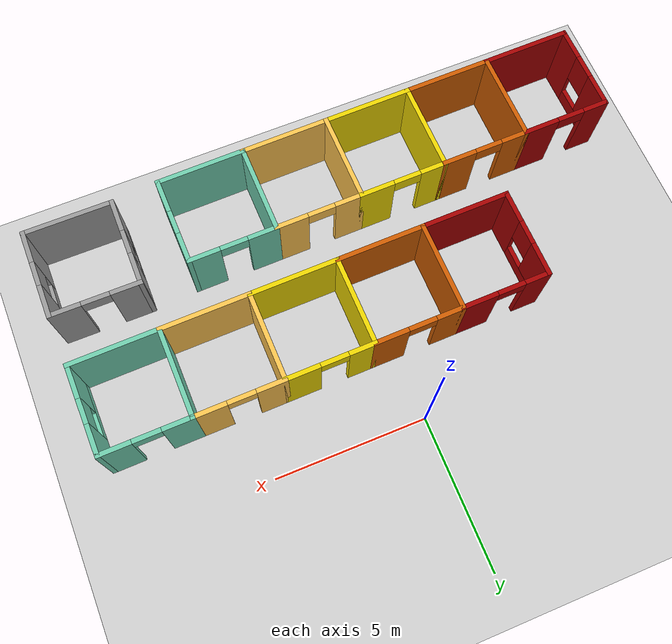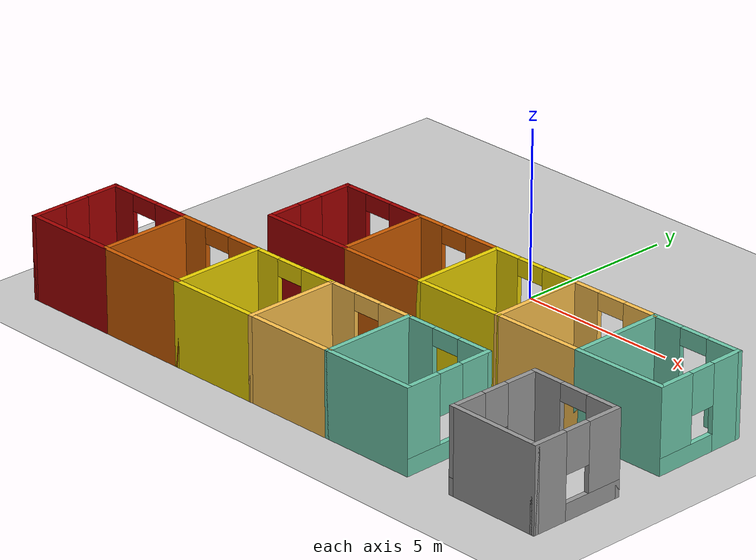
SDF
<sdf version="1.6">
 <world name="default">
  <model name="ground_plane">
   <static>1</static>
   <link name="link">
    <collision name="collision">
     <geometry><plane><normal>0 0 1</normal><size>100 100</size></plane></geometry>
     <surface><friction><ode><mu>100</mu><mu2>50</mu2></ode></friction></surface>
    </collision>
    <visual name="visual">
     <cast_shadows>0</cast_shadows>
     <geometry><plane><normal>0 0 1</normal><size>100 100</size></plane></geometry>
     <material>
      <script><uri>file://media/materials/scripts/gazebo.material</uri><name>Gazebo/Grey</name></script>
     </material>
    </visual>
   </link>
  </model>
  <model name="office_4_0">
   <pose>2.32046 -4.22977 0 0 0 -3.12984</pose>
   <link name="Wall_0">
    <collision name="Wall_0_Collision">
     <geometry><box><size>3 0.15 2.5</size></box></geometry>
     <pose>0 0 1.25 0 -0 0</pose>
    </collision>
    <visual name="Wall_0_Visual">
     <pose>0 0 1.25 0 -0 0</pose>
     <geometry><box><size>3 0.15 2.5</size></box></geometry>
     <material>
      <script><uri>file://media/materials/scripts/gazebo.material</uri><name>Gazebo/Grey</name></script>
      <ambient>0.435294 0.796078 0.67451 1</ambient>
     </material>
     <meta><layer>0</layer></meta>
    </visual>
    <pose>-5.7 0.8025 0 0 -0 0</pose>
   </link>
   <link name="Wall_1">
    <collision name="Wall_1_Collision">
     <geometry><box><size>3 0.15 2.5</size></box></geometry>
     <pose>0 0 1.25 0 -0 0</pose>
    </collision>
    <visual name="Wall_1_Visual">
     <pose>0 0 1.25 0 -0 0</pose>
     <geometry><box><size>3 0.15 2.5</size></box></geometry>
     <material>
      <script><uri>file://media/materials/scripts/gazebo.material</uri><name>Gazebo/Grey</name></script>
      <ambient>0.435294 0.796078 0.67451 1</ambient>
     </material>
     <meta><layer>0</layer></meta>
    </visual>
    <pose>-4.275 -0.6225 0 0 -0 -1.5708</pose>
   </link>
   <link name="Wall_10">
    <pose>5.7 -2.0475 0 0 -0 3.14159</pose>
    <visual name="Wall_10_Visual_0">
     <pose>-1.06469 0 1.25 0 -0 0</pose>
     <geometry><box><size>0.870623 0.15 2.5</size></box></geometry>
     <material>
      <script><uri>file://media/materials/scripts/gazebo.material</uri><name>Gazebo/Grey</name></script>
      <ambient>0.643137 0 0 1</ambient>
     </material>
     <meta><layer>0</layer></meta>
    </visual>
    <collision name="Wall_10_Collision_0">
     <geometry><box><size>0.870623 0.15 2.5</size></box></geometry>
     <pose>-1.06469 0 1.25 0 -0 0</pose>
    </collision>
    <visual name="Wall_10_Visual_1">
     <pose>0.885312 0 1.25 0 -0 0</pose>
     <geometry><box><size>1.22938 0.15 2.5</size></box></geometry>
     <material>
      <script><uri>file://media/materials/scripts/gazebo.material</uri><name>Gazebo/Grey</name></script>
      <ambient>0.643137 0 0 1</ambient>
     </material>
     <meta><layer>0</layer></meta>
    </visual>
    <collision name="Wall_10_Collision_1">
     <geometry><box><size>1.22938 0.15 2.5</size></box></geometry>
     <pose>0.885312 0 1.25 0 -0 0</pose>
    </collision>
    <visual name="Wall_10_Visual_2">
     <pose>-0.179377 0 2.25 0 -0 0</pose>
     <geometry><box><size>0.9 0.15 0.5</size></box></geometry>
     <material>
      <script><uri>file://media/materials/scripts/gazebo.material</uri><name>Gazebo/Grey</name></script>
      <ambient>0.643137 0 0 1</ambient>
     </material>
     <meta><layer>0</layer></meta>
    </visual>
    <collision name="Wall_10_Collision_2">
     <geometry><box><size>0.9 0.15 0.5</size></box></geometry>
     <pose>-0.179377 0 2.25 0 -0 0</pose>
    </collision>
   </link>
   <link name="Wall_12">
    <pose>0 -2.0475 0 0 -0 0</pose>
    <visual name="Wall_12_Visual_0">
     <pose>-0.909766 0 1.25 0 -0 0</pose>
     <geometry><box><size>1.18047 0.15 2.5</size></box></geometry>
     <material>
      <script><uri>file://media/materials/scripts/gazebo.material</uri><name>Gazebo/Grey</name></script>
      <ambient>0.929412 0.831373 0 1</ambient>
     </material>
     <meta><layer>0</layer></meta>
    </visual>
    <collision name="Wall_12_Collision_0">
     <geometry><box><size>1.18047 0.15 2.5</size></box></geometry>
     <pose>-0.909766 0 1.25 0 -0 0</pose>
    </collision>
    <visual name="Wall_12_Visual_1">
     <pose>1.04023 0 1.25 0 -0 0</pose>
     <geometry><box><size>0.919531 0.15 2.5</size></box></geometry>
     <material>
      <script><uri>file://media/materials/scripts/gazebo.material</uri><name>Gazebo/Grey</name></script>
      <ambient>0.929412 0.831373 0 1</ambient>
     </material>
     <meta><layer>0</layer></meta>
    </visual>
    <collision name="Wall_12_Collision_1">
     <geometry><box><size>0.919531 0.15 2.5</size></box></geometry>
     <pose>1.04023 0 1.25 0 -0 0</pose>
    </collision>
    <visual name="Wall_12_Visual_2">
     <pose>0.130469 0 2.25 0 -0 0</pose>
     <geometry><box><size>0.9 0.15 0.5</size></box></geometry>
     <material>
      <script><uri>file://media/materials/scripts/gazebo.material</uri><name>Gazebo/Grey</name></script>
      <ambient>0.929412 0.831373 0 1</ambient>
     </material>
     <meta><layer>0</layer></meta>
    </visual>
    <collision name="Wall_12_Collision_2">
     <geometry><box><size>0.9 0.15 0.5</size></box></geometry>
     <pose>0.130469 0 2.25 0 -0 0</pose>
    </collision>
   </link>
   <link name="Wall_14">
    <collision name="Wall_14_Collision">
     <geometry><box><size>3 0.15 2.5</size></box></geometry>
     <pose>0 0 1.25 0 -0 0</pose>
    </collision>
    <visual name="Wall_14_Visual">
     <pose>0 0 1.25 0 -0 0</pose>
     <geometry><box><size>3 0.15 2.5</size></box></geometry>
     <material>
      <script><uri>file://media/materials/scripts/gazebo.material</uri><name>Gazebo/Grey</name></script>
      <ambient>0.807843 0.360784 0 1</ambient>
     </material>
     <meta><layer>0</layer></meta>
    </visual>
    <pose>2.85 0.8025 0 0 -0 0</pose>
   </link>
   <link name="Wall_16">
    <collision name="Wall_16_Collision">
     <geometry><box><size>3 0.15 2.5</size></box></geometry>
     <pose>0 0 1.25 0 -0 0</pose>
    </collision>
    <visual name="Wall_16_Visual">
     <pose>0 0 1.25 0 -0 0</pose>
     <geometry><box><size>3 0.15 2.5</size></box></geometry>
     <material>
      <script><uri>file://media/materials/scripts/gazebo.material</uri><name>Gazebo/Grey</name></script>
      <ambient>1 0.764706 0.305882 1</ambient>
     </material>
     <meta><layer>0</layer></meta>
    </visual>
    <pose>-2.85 0.8025 0 0 -0 0</pose>
   </link>
   <link name="Wall_18">
    <pose>-5.7 -2.0475 0 0 -0 3.14159</pose>
    <visual name="Wall_18_Visual_0">
     <pose>-0.992968 0 1.25 0 -0 0</pose>
     <geometry><box><size>1.01406 0.15 2.5</size></box></geometry>
     <material>
      <script><uri>file://media/materials/scripts/gazebo.material</uri><name>Gazebo/Grey</name></script>
      <ambient>0.435294 0.796078 0.67451 1</ambient>
     </material>
     <meta><layer>0</layer></meta>
    </visual>
    <collision name="Wall_18_Collision_0">
     <geometry><box><size>1.01406 0.15 2.5</size></box></geometry>
     <pose>-0.992968 0 1.25 0 -0 0</pose>
    </collision>
    <visual name="Wall_18_Visual_1">
     <pose>0.957032 0 1.25 0 -0 0</pose>
     <geometry><box><size>1.08594 0.15 2.5</size></box></geometry>
     <material>
      <script><uri>file://media/materials/scripts/gazebo.material</uri><name>Gazebo/Grey</name></script>
      <ambient>0.435294 0.796078 0.67451 1</ambient>
     </material>
     <meta><layer>0</layer></meta>
    </visual>
    <collision name="Wall_18_Collision_1">
     <geometry><box><size>1.08594 0.15 2.5</size></box></geometry>
     <pose>0.957032 0 1.25 0 -0 0</pose>
    </collision>
    <visual name="Wall_18_Visual_2">
     <pose>-0.035935 0 2.25 0 -0 0</pose>
     <geometry><box><size>0.9 0.15 0.5</size></box></geometry>
     <material>
      <script><uri>file://media/materials/scripts/gazebo.material</uri><name>Gazebo/Grey</name></script>
      <ambient>0.435294 0.796078 0.67451 1</ambient>
     </material>
     <meta><layer>0</layer></meta>
    </visual>
    <collision name="Wall_18_Collision_2">
     <geometry><box><size>0.9 0.15 0.5</size></box></geometry>
     <pose>-0.035935 0 2.25 0 -0 0</pose>
    </collision>
   </link>
   <link name="Wall_19">
    <pose>-7.125 -0.6225 0 0 -0 1.5708</pose>
    <visual name="Wall_19_Visual_0">
     <pose>-0.974081 0 1.25 0 -0 0</pose>
     <geometry><box><size>1.05184 0.15 2.5</size></box></geometry>
     <material>
      <script><uri>file://media/materials/scripts/gazebo.material</uri><name>Gazebo/Grey</name></script>
      <ambient>0.435294 0.796078 0.67451 1</ambient>
     </material>
     <meta><layer>0</layer></meta>
    </visual>
    <collision name="Wall_19_Collision_0">
     <geometry><box><size>1.05184 0.15 2.5</size></box></geometry>
     <pose>-0.974081 0 1.25 0 -0 0</pose>
    </collision>
    <visual name="Wall_19_Visual_1">
     <pose>0.525919 0 0.25 0 -0 0</pose>
     <geometry><box><size>1.94816 0.15 0.5</size></box></geometry>
     <material>
      <script><uri>file://media/materials/scripts/gazebo.material</uri><name>Gazebo/Grey</name></script>
      <ambient>0.435294 0.796078 0.67451 1</ambient>
     </material>
     <meta><layer>0</layer></meta>
    </visual>
    <collision name="Wall_19_Collision_1">
     <geometry><box><size>1.94816 0.15 0.5</size></box></geometry>
     <pose>0.525919 0 0.25 0 -0 0</pose>
    </collision>
    <visual name="Wall_19_Visual_2">
     <pose>0.925919 0 1.5 0 -0 0</pose>
     <geometry><box><size>1.14816 0.15 2</size></box></geometry>
     <material>
      <script><uri>file://media/materials/scripts/gazebo.material</uri><name>Gazebo/Grey</name></script>
      <ambient>0.435294 0.796078 0.67451 1</ambient>
     </material>
     <meta><layer>0</layer></meta>
    </visual>
    <collision name="Wall_19_Collision_2">
     <geometry><box><size>1.14816 0.15 2</size></box></geometry>
     <pose>0.925919 0 1.5 0 -0 0</pose>
    </collision>
    <visual name="Wall_19_Visual_3">
     <pose>-0.048161 0 1.9 0 -0 0</pose>
     <geometry><box><size>0.8 0.15 1.2</size></box></geometry>
     <material>
      <script><uri>file://media/materials/scripts/gazebo.material</uri><name>Gazebo/Grey</name></script>
      <ambient>0.435294 0.796078 0.67451 1</ambient>
     </material>
     <meta><layer>0</layer></meta>
    </visual>
    <collision name="Wall_19_Collision_3">
     <geometry><box><size>0.8 0.15 1.2</size></box></geometry>
     <pose>-0.048161 0 1.9 0 -0 0</pose>
    </collision>
   </link>
   <link name="Wall_2">
    <pose>-2.85 -2.0475 0 0 -0 0</pose>
    <visual name="Wall_2_Visual_0">
     <pose>-0.937201 0 1.25 0 -0 0</pose>
     <geometry><box><size>1.1256 0.15 2.5</size></box></geometry>
     <material>
      <script><uri>file://media/materials/scripts/gazebo.material</uri><name>Gazebo/Grey</name></script>
      <ambient>1 0.764706 0.305882 1</ambient>
     </material>
     <meta><layer>0</layer></meta>
    </visual>
    <collision name="Wall_2_Collision_0">
     <geometry><box><size>1.1256 0.15 2.5</size></box></geometry>
     <pose>-0.937201 0 1.25 0 -0 0</pose>
    </collision>
    <visual name="Wall_2_Visual_1">
     <pose>1.0128 0 1.25 0 -0 0</pose>
     <geometry><box><size>0.974402 0.15 2.5</size></box></geometry>
     <material>
      <script><uri>file://media/materials/scripts/gazebo.material</uri><name>Gazebo/Grey</name></script>
      <ambient>1 0.764706 0.305882 1</ambient>
     </material>
     <meta><layer>0</layer></meta>
    </visual>
    <collision name="Wall_2_Collision_1">
     <geometry><box><size>0.974402 0.15 2.5</size></box></geometry>
     <pose>1.0128 0 1.25 0 -0 0</pose>
    </collision>
    <visual name="Wall_2_Visual_2">
     <pose>0.075598 0 2.25 0 -0 0</pose>
     <geometry><box><size>0.9 0.15 0.5</size></box></geometry>
     <material>
      <script><uri>file://media/materials/scripts/gazebo.material</uri><name>Gazebo/Grey</name></script>
      <ambient>1 0.764706 0.305882 1</ambient>
     </material>
     <meta><layer>0</layer></meta>
    </visual>
    <collision name="Wall_2_Collision_2">
     <geometry><box><size>0.9 0.15 0.5</size></box></geometry>
     <pose>0.075598 0 2.25 0 -0 0</pose>
    </collision>
   </link>
   <link name="Wall_3">
    <collision name="Wall_3_Collision">
     <geometry><box><size>3 0.15 2.5</size></box></geometry>
     <pose>0 0 1.25 0 -0 0</pose>
    </collision>
    <visual name="Wall_3_Visual">
     <pose>0 0 1.25 0 -0 0</pose>
     <geometry><box><size>3 0.15 2.5</size></box></geometry>
     <material>
      <script><uri>file://media/materials/scripts/gazebo.material</uri><name>Gazebo/Grey</name></script>
      <ambient>1 0.764706 0.305882 1</ambient>
     </material>
     <meta><layer>0</layer></meta>
    </visual>
    <pose>-1.425 -0.6225 0 0 -0 1.5708</pose>
   </link>
   <link name="Wall_4">
    <collision name="Wall_4_Collision">
     <geometry><box><size>3 0.15 2.5</size></box></geometry>
     <pose>0 0 1.25 0 -0 0</pose>
    </collision>
    <visual name="Wall_4_Visual">
     <pose>0 0 1.25 0 -0 0</pose>
     <geometry><box><size>3 0.15 2.5</size></box></geometry>
     <material>
      <script><uri>file://media/materials/scripts/gazebo.material</uri><name>Gazebo/Grey</name></script>
      <ambient>0.929412 0.831373 0 1</ambient>
     </material>
     <meta><layer>0</layer></meta>
    </visual>
    <pose>0 0.8025 0 0 -0 0</pose>
   </link>
   <link name="Wall_5">
    <collision name="Wall_5_Collision">
     <geometry><box><size>3 0.15 2.5</size></box></geometry>
     <pose>0 0 1.25 0 -0 0</pose>
    </collision>
    <visual name="Wall_5_Visual">
     <pose>0 0 1.25 0 -0 0</pose>
     <geometry><box><size>3 0.15 2.5</size></box></geometry>
     <material>
      <script><uri>file://media/materials/scripts/gazebo.material</uri><name>Gazebo/Grey</name></script>
      <ambient>0.929412 0.831373 0 1</ambient>
     </material>
     <meta><layer>0</layer></meta>
    </visual>
    <pose>1.425 -0.6225 0 0 -0 -1.5708</pose>
   </link>
   <link name="Wall_6">
    <pose>2.85 -2.0475 0 0 -0 0</pose>
    <visual name="Wall_6_Visual_0">
     <pose>-0.920352 0 1.25 0 -0 0</pose>
     <geometry><box><size>1.1593 0.15 2.5</size></box></geometry>
     <material>
      <script><uri>file://media/materials/scripts/gazebo.material</uri><name>Gazebo/Grey</name></script>
      <ambient>0.807843 0.360784 0 1</ambient>
     </material>
     <meta><layer>0</layer></meta>
    </visual>
    <collision name="Wall_6_Collision_0">
     <geometry><box><size>1.1593 0.15 2.5</size></box></geometry>
     <pose>-0.920352 0 1.25 0 -0 0</pose>
    </collision>
    <visual name="Wall_6_Visual_1">
     <pose>1.02965 0 1.25 0 -0 0</pose>
     <geometry><box><size>0.940704 0.15 2.5</size></box></geometry>
     <material>
      <script><uri>file://media/materials/scripts/gazebo.material</uri><name>Gazebo/Grey</name></script>
      <ambient>0.807843 0.360784 0 1</ambient>
     </material>
     <meta><layer>0</layer></meta>
    </visual>
    <collision name="Wall_6_Collision_1">
     <geometry><box><size>0.940704 0.15 2.5</size></box></geometry>
     <pose>1.02965 0 1.25 0 -0 0</pose>
    </collision>
    <visual name="Wall_6_Visual_2">
     <pose>0.109296 0 2.25 0 -0 0</pose>
     <geometry><box><size>0.9 0.15 0.5</size></box></geometry>
     <material>
      <script><uri>file://media/materials/scripts/gazebo.material</uri><name>Gazebo/Grey</name></script>
      <ambient>0.807843 0.360784 0 1</ambient>
     </material>
     <meta><layer>0</layer></meta>
    </visual>
    <collision name="Wall_6_Collision_2">
     <geometry><box><size>0.9 0.15 0.5</size></box></geometry>
     <pose>0.109296 0 2.25 0 -0 0</pose>
    </collision>
   </link>
   <link name="Wall_7">
    <collision name="Wall_7_Collision">
     <geometry><box><size>3 0.15 2.5</size></box></geometry>
     <pose>0 0 1.25 0 -0 0</pose>
    </collision>
    <visual name="Wall_7_Visual">
     <pose>0 0 1.25 0 -0 0</pose>
     <geometry><box><size>3 0.15 2.5</size></box></geometry>
     <material>
      <script><uri>file://media/materials/scripts/gazebo.material</uri><name>Gazebo/Grey</name></script>
      <ambient>0.807843 0.360784 0 1</ambient>
     </material>
     <meta><layer>0</layer></meta>
    </visual>
    <pose>4.275 -0.6225 0 0 -0 1.5708</pose>
   </link>
   <link name="Wall_8">
    <collision name="Wall_8_Collision">
     <geometry><box><size>3 0.15 2.5</size></box></geometry>
     <pose>0 0 1.25 0 -0 0</pose>
    </collision>
    <visual name="Wall_8_Visual">
     <pose>0 0 1.25 0 -0 0</pose>
     <geometry><box><size>3 0.15 2.5</size></box></geometry>
     <material>
      <script><uri>file://media/materials/scripts/gazebo.material</uri><name>Gazebo/Grey</name></script>
      <ambient>0.643137 0 0 1</ambient>
     </material>
     <meta><layer>0</layer></meta>
    </visual>
    <pose>5.7 0.8025 0 0 -0 0</pose>
   </link>
   <link name="Wall_9">
    <pose>7.125 -0.6225 0 0 -0 -1.5708</pose>
    <visual name="Wall_9_Visual_0">
     <pose>-0.956337 0 1.25 0 -0 0</pose>
     <geometry><box><size>1.08733 0.15 2.5</size></box></geometry>
     <material>
      <script><uri>file://media/materials/scripts/gazebo.material</uri><name>Gazebo/Grey</name></script>
      <ambient>0.643137 0 0 1</ambient>
     </material>
     <meta><layer>0</layer></meta>
    </visual>
    <collision name="Wall_9_Collision_0">
     <geometry><box><size>1.08733 0.15 2.5</size></box></geometry>
     <pose>-0.956337 0 1.25 0 -0 0</pose>
    </collision>
    <visual name="Wall_9_Visual_1">
     <pose>0.543663 0 0.25 0 -0 0</pose>
     <geometry><box><size>1.91267 0.15 0.5</size></box></geometry>
     <material>
      <script><uri>file://media/materials/scripts/gazebo.material</uri><name>Gazebo/Grey</name></script>
      <ambient>0.643137 0 0 1</ambient>
     </material>
     <meta><layer>0</layer></meta>
    </visual>
    <collision name="Wall_9_Collision_1">
     <geometry><box><size>1.91267 0.15 0.5</size></box></geometry>
     <pose>0.543663 0 0.25 0 -0 0</pose>
    </collision>
    <visual name="Wall_9_Visual_2">
     <pose>0.943663 0 1.5 0 -0 0</pose>
     <geometry><box><size>1.11267 0.15 2</size></box></geometry>
     <material>
      <script><uri>file://media/materials/scripts/gazebo.material</uri><name>Gazebo/Grey</name></script>
      <ambient>0.643137 0 0 1</ambient>
     </material>
     <meta><layer>0</layer></meta>
    </visual>
    <collision name="Wall_9_Collision_2">
     <geometry><box><size>1.11267 0.15 2</size></box></geometry>
     <pose>0.943663 0 1.5 0 -0 0</pose>
    </collision>
    <visual name="Wall_9_Visual_3">
     <pose>-0.012674 0 1.9 0 -0 0</pose>
     <geometry><box><size>0.8 0.15 1.2</size></box></geometry>
     <material>
      <script><uri>file://media/materials/scripts/gazebo.material</uri><name>Gazebo/Grey</name></script>
      <ambient>0.643137 0 0 1</ambient>
     </material>
     <meta><layer>0</layer></meta>
    </visual>
    <collision name="Wall_9_Collision_3">
     <geometry><box><size>0.8 0.15 1.2</size></box></geometry>
     <pose>-0.012674 0 1.9 0 -0 0</pose>
    </collision>
   </link>
   <static>1</static>
  </model>
  <model name="my_ball">
   <link name="link_0">
    <inertial>
     <mass>1</mass>
     <inertia><ixx>0.1</ixx><ixy>0</ixy><ixz>0</ixz><iyy>0.1</iyy><iyz>0</iyz><izz>0.1</izz></inertia>
    </inertial>
    <visual name="visual">
     <geometry><sphere><radius>0.1</radius></sphere></geometry>
     <material>
      <lighting>1</lighting>
      <script><uri>file://media/materials/scripts/gazebo.material</uri><name>Gazebo/White</name></script>
      <ambient>1 1 1 1</ambient>
      <diffuse>1 1 1 1</diffuse>
      <specular>1 1 1 1</specular>
      <emissive>1 1 1 1</emissive>
      <shader type="vertex"><normal_map>__default__</normal_map></shader>
     </material>
    </visual>
    <collision name="collision">
     <geometry><sphere><radius>0.1</radius></sphere></geometry>
     <surface>
      <friction>
       <ode><mu>1</mu><mu2>1</mu2><fdir1>0 0 0</fdir1><slip1>0</slip1><slip2>0</slip2></ode>
       <torsional>
        <coefficient>1</coefficient>
        <patch_radius>0</patch_radius>
        <surface_radius>0</surface_radius>
        <use_patch_radius>1</use_patch_radius>
        <ode><slip>0</slip></ode>
       </torsional>
      </friction>
      <bounce><restitution_coefficient>0</restitution_coefficient><threshold>1e+06</threshold></bounce>
      <contact>
       <collide_without_contact>0</collide_without_contact>
       <collide_without_contact_bitmask>1</collide_without_contact_bitmask>
       <collide_bitmask>1</collide_bitmask>
       <ode>
        <soft_cfm>0</soft_cfm>
        <soft_erp>0.2</soft_erp>
        <kp>1e+13</kp>
        <kd>1</kd>
        <max_vel>0.01</max_vel>
        <min_depth>0</min_depth>
       </ode>
       <bullet>
        <split_impulse>1</split_impulse>
        <split_impulse_penetration_threshold>-0.01</split_impulse_penetration_threshold>
        <soft_cfm>0</soft_cfm>
        <soft_erp>0.2</soft_erp>
        <kp>1e+13</kp>
        <kd>1</kd>
       </bullet>
      </contact>
     </surface>
    </collision>
   </link>
   <static>0</static>
   <pose>-1.34211 -5.86794 0.1 0 -0 0</pose>
  </model>
  <model name="office_4_0_clone">
   <pose>-2.02145 -8.8346 0 0 0 -3.12984</pose>
   <link name="Wall_0">
    <collision name="Wall_0_Collision">
     <geometry><box><size>3 0.15 2.5</size></box></geometry>
     <pose>0 0 1.25 0 -0 0</pose>
    </collision>
    <visual name="Wall_0_Visual">
     <pose>0 0 1.25 0 -0 0</pose>
     <geometry><box><size>3 0.15 2.5</size></box></geometry>
     <material>
      <script><uri>file://media/materials/scripts/gazebo.material</uri><name>Gazebo/Grey</name></script>
      <ambient>0.435294 0.796078 0.67451 1</ambient>
     </material>
     <meta><layer>0</layer></meta>
    </visual>
    <pose>-5.7 0.8025 0 0 -0 0</pose>
   </link>
   <link name="Wall_1">
    <collision name="Wall_1_Collision">
     <geometry><box><size>3 0.15 2.5</size></box></geometry>
     <pose>0 0 1.25 0 -0 0</pose>
    </collision>
    <visual name="Wall_1_Visual">
     <pose>0 0 1.25 0 -0 0</pose>
     <geometry><box><size>3 0.15 2.5</size></box></geometry>
     <material>
      <script><uri>file://media/materials/scripts/gazebo.material</uri><name>Gazebo/Grey</name></script>
      <ambient>0.435294 0.796078 0.67451 1</ambient>
     </material>
     <meta><layer>0</layer></meta>
    </visual>
    <pose>-4.275 -0.6225 0 0 -0 -1.5708</pose>
   </link>
   <link name="Wall_10">
    <pose>5.7 -2.0475 0 0 -0 3.14159</pose>
    <visual name="Wall_10_Visual_0">
     <pose>-1.06469 0 1.25 0 -0 0</pose>
     <geometry><box><size>0.870623 0.15 2.5</size></box></geometry>
     <material>
      <script><uri>file://media/materials/scripts/gazebo.material</uri><name>Gazebo/Grey</name></script>
      <ambient>0.643137 0 0 1</ambient>
     </material>
     <meta><layer>0</layer></meta>
    </visual>
    <collision name="Wall_10_Collision_0">
     <geometry><box><size>0.870623 0.15 2.5</size></box></geometry>
     <pose>-1.06469 0 1.25 0 -0 0</pose>
    </collision>
    <visual name="Wall_10_Visual_1">
     <pose>0.885312 0 1.25 0 -0 0</pose>
     <geometry><box><size>1.22938 0.15 2.5</size></box></geometry>
     <material>
      <script><uri>file://media/materials/scripts/gazebo.material</uri><name>Gazebo/Grey</name></script>
      <ambient>0.643137 0 0 1</ambient>
     </material>
     <meta><layer>0</layer></meta>
    </visual>
    <collision name="Wall_10_Collision_1">
     <geometry><box><size>1.22938 0.15 2.5</size></box></geometry>
     <pose>0.885312 0 1.25 0 -0 0</pose>
    </collision>
    <visual name="Wall_10_Visual_2">
     <pose>-0.179377 0 2.25 0 -0 0</pose>
     <geometry><box><size>0.9 0.15 0.5</size></box></geometry>
     <material>
      <script><uri>file://media/materials/scripts/gazebo.material</uri><name>Gazebo/Grey</name></script>
      <ambient>0.643137 0 0 1</ambient>
     </material>
     <meta><layer>0</layer></meta>
    </visual>
    <collision name="Wall_10_Collision_2">
     <geometry><box><size>0.9 0.15 0.5</size></box></geometry>
     <pose>-0.179377 0 2.25 0 -0 0</pose>
    </collision>
   </link>
   <link name="Wall_12">
    <pose>0 -2.0475 0 0 -0 0</pose>
    <visual name="Wall_12_Visual_0">
     <pose>-0.909766 0 1.25 0 -0 0</pose>
     <geometry><box><size>1.18047 0.15 2.5</size></box></geometry>
     <material>
      <script><uri>file://media/materials/scripts/gazebo.material</uri><name>Gazebo/Grey</name></script>
      <ambient>0.929412 0.831373 0 1</ambient>
     </material>
     <meta><layer>0</layer></meta>
    </visual>
    <collision name="Wall_12_Collision_0">
     <geometry><box><size>1.18047 0.15 2.5</size></box></geometry>
     <pose>-0.909766 0 1.25 0 -0 0</pose>
    </collision>
    <visual name="Wall_12_Visual_1">
     <pose>1.04023 0 1.25 0 -0 0</pose>
     <geometry><box><size>0.919531 0.15 2.5</size></box></geometry>
     <material>
      <script><uri>file://media/materials/scripts/gazebo.material</uri><name>Gazebo/Grey</name></script>
      <ambient>0.929412 0.831373 0 1</ambient>
     </material>
     <meta><layer>0</layer></meta>
    </visual>
    <collision name="Wall_12_Collision_1">
     <geometry><box><size>0.919531 0.15 2.5</size></box></geometry>
     <pose>1.04023 0 1.25 0 -0 0</pose>
    </collision>
    <visual name="Wall_12_Visual_2">
     <pose>0.130469 0 2.25 0 -0 0</pose>
     <geometry><box><size>0.9 0.15 0.5</size></box></geometry>
     <material>
      <script><uri>file://media/materials/scripts/gazebo.material</uri><name>Gazebo/Grey</name></script>
      <ambient>0.929412 0.831373 0 1</ambient>
     </material>
     <meta><layer>0</layer></meta>
    </visual>
    <collision name="Wall_12_Collision_2">
     <geometry><box><size>0.9 0.15 0.5</size></box></geometry>
     <pose>0.130469 0 2.25 0 -0 0</pose>
    </collision>
   </link>
   <link name="Wall_14">
    <collision name="Wall_14_Collision">
     <geometry><box><size>3 0.15 2.5</size></box></geometry>
     <pose>0 0 1.25 0 -0 0</pose>
    </collision>
    <visual name="Wall_14_Visual">
     <pose>0 0 1.25 0 -0 0</pose>
     <geometry><box><size>3 0.15 2.5</size></box></geometry>
     <material>
      <script><uri>file://media/materials/scripts/gazebo.material</uri><name>Gazebo/Grey</name></script>
      <ambient>0.807843 0.360784 0 1</ambient>
     </material>
     <meta><layer>0</layer></meta>
    </visual>
    <pose>2.85 0.8025 0 0 -0 0</pose>
   </link>
   <link name="Wall_16">
    <collision name="Wall_16_Collision">
     <geometry><box><size>3 0.15 2.5</size></box></geometry>
     <pose>0 0 1.25 0 -0 0</pose>
    </collision>
    <visual name="Wall_16_Visual">
     <pose>0 0 1.25 0 -0 0</pose>
     <geometry><box><size>3 0.15 2.5</size></box></geometry>
     <material>
      <script><uri>file://media/materials/scripts/gazebo.material</uri><name>Gazebo/Grey</name></script>
      <ambient>1 0.764706 0.305882 1</ambient>
     </material>
     <meta><layer>0</layer></meta>
    </visual>
    <pose>-2.85 0.8025 0 0 -0 0</pose>
   </link>
   <link name="Wall_18">
    <pose>-5.7 -2.0475 0 0 -0 3.14159</pose>
    <visual name="Wall_18_Visual_0">
     <pose>-0.992968 0 1.25 0 -0 0</pose>
     <geometry><box><size>1.01406 0.15 2.5</size></box></geometry>
     <material>
      <script><uri>file://media/materials/scripts/gazebo.material</uri><name>Gazebo/Grey</name></script>
      <ambient>0.435294 0.796078 0.67451 1</ambient>
     </material>
     <meta><layer>0</layer></meta>
    </visual>
    <collision name="Wall_18_Collision_0">
     <geometry><box><size>1.01406 0.15 2.5</size></box></geometry>
     <pose>-0.992968 0 1.25 0 -0 0</pose>
    </collision>
    <visual name="Wall_18_Visual_1">
     <pose>0.957032 0 1.25 0 -0 0</pose>
     <geometry><box><size>1.08594 0.15 2.5</size></box></geometry>
     <material>
      <script><uri>file://media/materials/scripts/gazebo.material</uri><name>Gazebo/Grey</name></script>
      <ambient>0.435294 0.796078 0.67451 1</ambient>
     </material>
     <meta><layer>0</layer></meta>
    </visual>
    <collision name="Wall_18_Collision_1">
     <geometry><box><size>1.08594 0.15 2.5</size></box></geometry>
     <pose>0.957032 0 1.25 0 -0 0</pose>
    </collision>
    <visual name="Wall_18_Visual_2">
     <pose>-0.035935 0 2.25 0 -0 0</pose>
     <geometry><box><size>0.9 0.15 0.5</size></box></geometry>
     <material>
      <script><uri>file://media/materials/scripts/gazebo.material</uri><name>Gazebo/Grey</name></script>
      <ambient>0.435294 0.796078 0.67451 1</ambient>
     </material>
     <meta><layer>0</layer></meta>
    </visual>
    <collision name="Wall_18_Collision_2">
     <geometry><box><size>0.9 0.15 0.5</size></box></geometry>
     <pose>-0.035935 0 2.25 0 -0 0</pose>
    </collision>
   </link>
   <link name="Wall_19">
    <pose>-7.125 -0.6225 0 0 -0 1.5708</pose>
    <visual name="Wall_19_Visual_0">
     <pose>-0.974081 0 1.25 0 -0 0</pose>
     <geometry><box><size>1.05184 0.15 2.5</size></box></geometry>
     <material>
      <script><uri>file://media/materials/scripts/gazebo.material</uri><name>Gazebo/Grey</name></script>
      <ambient>0.435294 0.796078 0.67451 1</ambient>
     </material>
     <meta><layer>0</layer></meta>
    </visual>
    <collision name="Wall_19_Collision_0">
     <geometry><box><size>1.05184 0.15 2.5</size></box></geometry>
     <pose>-0.974081 0 1.25 0 -0 0</pose>
    </collision>
    <visual name="Wall_19_Visual_1">
     <pose>0.525919 0 0.25 0 -0 0</pose>
     <geometry><box><size>1.94816 0.15 0.5</size></box></geometry>
     <material>
      <script><uri>file://media/materials/scripts/gazebo.material</uri><name>Gazebo/Grey</name></script>
      <ambient>0.435294 0.796078 0.67451 1</ambient>
     </material>
     <meta><layer>0</layer></meta>
    </visual>
    <collision name="Wall_19_Collision_1">
     <geometry><box><size>1.94816 0.15 0.5</size></box></geometry>
     <pose>0.525919 0 0.25 0 -0 0</pose>
    </collision>
    <visual name="Wall_19_Visual_2">
     <pose>0.925919 0 1.5 0 -0 0</pose>
     <geometry><box><size>1.14816 0.15 2</size></box></geometry>
     <material>
      <script><uri>file://media/materials/scripts/gazebo.material</uri><name>Gazebo/Grey</name></script>
      <ambient>0.435294 0.796078 0.67451 1</ambient>
     </material>
     <meta><layer>0</layer></meta>
    </visual>
    <collision name="Wall_19_Collision_2">
     <geometry><box><size>1.14816 0.15 2</size></box></geometry>
     <pose>0.925919 0 1.5 0 -0 0</pose>
    </collision>
    <visual name="Wall_19_Visual_3">
     <pose>-0.048161 0 1.9 0 -0 0</pose>
     <geometry><box><size>0.8 0.15 1.2</size></box></geometry>
     <material>
      <script><uri>file://media/materials/scripts/gazebo.material</uri><name>Gazebo/Grey</name></script>
      <ambient>0.435294 0.796078 0.67451 1</ambient>
     </material>
     <meta><layer>0</layer></meta>
    </visual>
    <collision name="Wall_19_Collision_3">
     <geometry><box><size>0.8 0.15 1.2</size></box></geometry>
     <pose>-0.048161 0 1.9 0 -0 0</pose>
    </collision>
   </link>
   <link name="Wall_2">
    <pose>-2.85 -2.0475 0 0 -0 0</pose>
    <visual name="Wall_2_Visual_0">
     <pose>-0.937201 0 1.25 0 -0 0</pose>
     <geometry><box><size>1.1256 0.15 2.5</size></box></geometry>
     <material>
      <script><uri>file://media/materials/scripts/gazebo.material</uri><name>Gazebo/Grey</name></script>
      <ambient>1 0.764706 0.305882 1</ambient>
     </material>
     <meta><layer>0</layer></meta>
    </visual>
    <collision name="Wall_2_Collision_0">
     <geometry><box><size>1.1256 0.15 2.5</size></box></geometry>
     <pose>-0.937201 0 1.25 0 -0 0</pose>
    </collision>
    <visual name="Wall_2_Visual_1">
     <pose>1.0128 0 1.25 0 -0 0</pose>
     <geometry><box><size>0.974402 0.15 2.5</size></box></geometry>
     <material>
      <script><uri>file://media/materials/scripts/gazebo.material</uri><name>Gazebo/Grey</name></script>
      <ambient>1 0.764706 0.305882 1</ambient>
     </material>
     <meta><layer>0</layer></meta>
    </visual>
    <collision name="Wall_2_Collision_1">
     <geometry><box><size>0.974402 0.15 2.5</size></box></geometry>
     <pose>1.0128 0 1.25 0 -0 0</pose>
    </collision>
    <visual name="Wall_2_Visual_2">
     <pose>0.075598 0 2.25 0 -0 0</pose>
     <geometry><box><size>0.9 0.15 0.5</size></box></geometry>
     <material>
      <script><uri>file://media/materials/scripts/gazebo.material</uri><name>Gazebo/Grey</name></script>
      <ambient>1 0.764706 0.305882 1</ambient>
     </material>
     <meta><layer>0</layer></meta>
    </visual>
    <collision name="Wall_2_Collision_2">
     <geometry><box><size>0.9 0.15 0.5</size></box></geometry>
     <pose>0.075598 0 2.25 0 -0 0</pose>
    </collision>
   </link>
   <link name="Wall_3">
    <collision name="Wall_3_Collision">
     <geometry><box><size>3 0.15 2.5</size></box></geometry>
     <pose>0 0 1.25 0 -0 0</pose>
    </collision>
    <visual name="Wall_3_Visual">
     <pose>0 0 1.25 0 -0 0</pose>
     <geometry><box><size>3 0.15 2.5</size></box></geometry>
     <material>
      <script><uri>file://media/materials/scripts/gazebo.material</uri><name>Gazebo/Grey</name></script>
      <ambient>1 0.764706 0.305882 1</ambient>
     </material>
     <meta><layer>0</layer></meta>
    </visual>
    <pose>-1.425 -0.6225 0 0 -0 1.5708</pose>
   </link>
   <link name="Wall_4">
    <collision name="Wall_4_Collision">
     <geometry><box><size>3 0.15 2.5</size></box></geometry>
     <pose>0 0 1.25 0 -0 0</pose>
    </collision>
    <visual name="Wall_4_Visual">
     <pose>0 0 1.25 0 -0 0</pose>
     <geometry><box><size>3 0.15 2.5</size></box></geometry>
     <material>
      <script><uri>file://media/materials/scripts/gazebo.material</uri><name>Gazebo/Grey</name></script>
      <ambient>0.929412 0.831373 0 1</ambient>
     </material>
     <meta><layer>0</layer></meta>
    </visual>
    <pose>0 0.8025 0 0 -0 0</pose>
   </link>
   <link name="Wall_5">
    <collision name="Wall_5_Collision">
     <geometry><box><size>3 0.15 2.5</size></box></geometry>
     <pose>0 0 1.25 0 -0 0</pose>
    </collision>
    <visual name="Wall_5_Visual">
     <pose>0 0 1.25 0 -0 0</pose>
     <geometry><box><size>3 0.15 2.5</size></box></geometry>
     <material>
      <script><uri>file://media/materials/scripts/gazebo.material</uri><name>Gazebo/Grey</name></script>
      <ambient>0.929412 0.831373 0 1</ambient>
     </material>
     <meta><layer>0</layer></meta>
    </visual>
    <pose>1.425 -0.6225 0 0 -0 -1.5708</pose>
   </link>
   <link name="Wall_6">
    <pose>2.85 -2.0475 0 0 -0 0</pose>
    <visual name="Wall_6_Visual_0">
     <pose>-0.920352 0 1.25 0 -0 0</pose>
     <geometry><box><size>1.1593 0.15 2.5</size></box></geometry>
     <material>
      <script><uri>file://media/materials/scripts/gazebo.material</uri><name>Gazebo/Grey</name></script>
      <ambient>0.807843 0.360784 0 1</ambient>
     </material>
     <meta><layer>0</layer></meta>
    </visual>
    <collision name="Wall_6_Collision_0">
     <geometry><box><size>1.1593 0.15 2.5</size></box></geometry>
     <pose>-0.920352 0 1.25 0 -0 0</pose>
    </collision>
    <visual name="Wall_6_Visual_1">
     <pose>1.02965 0 1.25 0 -0 0</pose>
     <geometry><box><size>0.940704 0.15 2.5</size></box></geometry>
     <material>
      <script><uri>file://media/materials/scripts/gazebo.material</uri><name>Gazebo/Grey</name></script>
      <ambient>0.807843 0.360784 0 1</ambient>
     </material>
     <meta><layer>0</layer></meta>
    </visual>
    <collision name="Wall_6_Collision_1">
     <geometry><box><size>0.940704 0.15 2.5</size></box></geometry>
     <pose>1.02965 0 1.25 0 -0 0</pose>
    </collision>
    <visual name="Wall_6_Visual_2">
     <pose>0.109296 0 2.25 0 -0 0</pose>
     <geometry><box><size>0.9 0.15 0.5</size></box></geometry>
     <material>
      <script><uri>file://media/materials/scripts/gazebo.material</uri><name>Gazebo/Grey</name></script>
      <ambient>0.807843 0.360784 0 1</ambient>
     </material>
     <meta><layer>0</layer></meta>
    </visual>
    <collision name="Wall_6_Collision_2">
     <geometry><box><size>0.9 0.15 0.5</size></box></geometry>
     <pose>0.109296 0 2.25 0 -0 0</pose>
    </collision>
   </link>
   <link name="Wall_7">
    <collision name="Wall_7_Collision">
     <geometry><box><size>3 0.15 2.5</size></box></geometry>
     <pose>0 0 1.25 0 -0 0</pose>
    </collision>
    <visual name="Wall_7_Visual">
     <pose>0 0 1.25 0 -0 0</pose>
     <geometry><box><size>3 0.15 2.5</size></box></geometry>
     <material>
      <script><uri>file://media/materials/scripts/gazebo.material</uri><name>Gazebo/Grey</name></script>
      <ambient>0.807843 0.360784 0 1</ambient>
     </material>
     <meta><layer>0</layer></meta>
    </visual>
    <pose>4.275 -0.6225 0 0 -0 1.5708</pose>
   </link>
   <link name="Wall_8">
    <collision name="Wall_8_Collision">
     <geometry><box><size>3 0.15 2.5</size></box></geometry>
     <pose>0 0 1.25 0 -0 0</pose>
    </collision>
    <visual name="Wall_8_Visual">
     <pose>0 0 1.25 0 -0 0</pose>
     <geometry><box><size>3 0.15 2.5</size></box></geometry>
     <material>
      <script><uri>file://media/materials/scripts/gazebo.material</uri><name>Gazebo/Grey</name></script>
      <ambient>0.643137 0 0 1</ambient>
     </material>
     <meta><layer>0</layer></meta>
    </visual>
    <pose>5.7 0.8025 0 0 -0 0</pose>
   </link>
   <link name="Wall_9">
    <pose>7.125 -0.6225 0 0 -0 -1.5708</pose>
    <visual name="Wall_9_Visual_0">
     <pose>-0.956337 0 1.25 0 -0 0</pose>
     <geometry><box><size>1.08733 0.15 2.5</size></box></geometry>
     <material>
      <script><uri>file://media/materials/scripts/gazebo.material</uri><name>Gazebo/Grey</name></script>
      <ambient>0.643137 0 0 1</ambient>
     </material>
     <meta><layer>0</layer></meta>
    </visual>
    <collision name="Wall_9_Collision_0">
     <geometry><box><size>1.08733 0.15 2.5</size></box></geometry>
     <pose>-0.956337 0 1.25 0 -0 0</pose>
    </collision>
    <visual name="Wall_9_Visual_1">
     <pose>0.543663 0 0.25 0 -0 0</pose>
     <geometry><box><size>1.91267 0.15 0.5</size></box></geometry>
     <material>
      <script><uri>file://media/materials/scripts/gazebo.material</uri><name>Gazebo/Grey</name></script>
      <ambient>0.643137 0 0 1</ambient>
     </material>
     <meta><layer>0</layer></meta>
    </visual>
    <collision name="Wall_9_Collision_1">
     <geometry><box><size>1.91267 0.15 0.5</size></box></geometry>
     <pose>0.543663 0 0.25 0 -0 0</pose>
    </collision>
    <visual name="Wall_9_Visual_2">
     <pose>0.943663 0 1.5 0 -0 0</pose>
     <geometry><box><size>1.11267 0.15 2</size></box></geometry>
     <material>
      <script><uri>file://media/materials/scripts/gazebo.material</uri><name>Gazebo/Grey</name></script>
      <ambient>0.643137 0 0 1</ambient>
     </material>
     <meta><layer>0</layer></meta>
    </visual>
    <collision name="Wall_9_Collision_2">
     <geometry><box><size>1.11267 0.15 2</size></box></geometry>
     <pose>0.943663 0 1.5 0 -0 0</pose>
    </collision>
    <visual name="Wall_9_Visual_3">
     <pose>-0.012674 0 1.9 0 -0 0</pose>
     <geometry><box><size>0.8 0.15 1.2</size></box></geometry>
     <material>
      <script><uri>file://media/materials/scripts/gazebo.material</uri><name>Gazebo/Grey</name></script>
      <ambient>0.643137 0 0 1</ambient>
     </material>
     <meta><layer>0</layer></meta>
    </visual>
    <collision name="Wall_9_Collision_3">
     <geometry><box><size>0.8 0.15 1.2</size></box></geometry>
     <pose>-0.012674 0 1.9 0 -0 0</pose>
    </collision>
   </link>
   <static>1</static>
  </model>
  <model name="office1_clone">
   <pose>7.45294 -6.64401 0 0 -0 1.56637</pose>
   <link name="Wall_0">
    <pose>-1.3775 -2.0475 0 0 -0 0</pose>
    <visual name="Wall_0_Visual_0">
     <pose>-0.9525 0 1.25 0 -0 0</pose>
     <geometry><box><size>1.095 0.15 2.5</size></box></geometry>
     <material>
      <script><uri>file://media/materials/scripts/gazebo.material</uri><name>Gazebo/Grey</name></script>
      <ambient>1 1 1 1</ambient>
     </material>
     <meta><layer>0</layer></meta>
    </visual>
    <collision name="Wall_0_Collision_0">
     <geometry><box><size>1.095 0.15 2.5</size></box></geometry>
     <pose>-0.9525 0 1.25 0 -0 0</pose>
    </collision>
    <visual name="Wall_0_Visual_1">
     <pose>0.5475 0 0.25 0 -0 0</pose>
     <geometry><box><size>1.905 0.15 0.5</size></box></geometry>
     <material>
      <script><uri>file://media/materials/scripts/gazebo.material</uri><name>Gazebo/Grey</name></script>
      <ambient>1 1 1 1</ambient>
     </material>
     <meta><layer>0</layer></meta>
    </visual>
    <collision name="Wall_0_Collision_1">
     <geometry><box><size>1.905 0.15 0.5</size></box></geometry>
     <pose>0.5475 0 0.25 0 -0 0</pose>
    </collision>
    <visual name="Wall_0_Visual_2">
     <pose>0.9475 0 1.5 0 -0 0</pose>
     <geometry><box><size>1.105 0.15 2</size></box></geometry>
     <material>
      <script><uri>file://media/materials/scripts/gazebo.material</uri><name>Gazebo/Grey</name></script>
      <ambient>1 1 1 1</ambient>
     </material>
     <meta><layer>0</layer></meta>
    </visual>
    <collision name="Wall_0_Collision_2">
     <geometry><box><size>1.105 0.15 2</size></box></geometry>
     <pose>0.9475 0 1.5 0 -0 0</pose>
    </collision>
    <visual name="Wall_0_Visual_3">
     <pose>-0.005 0 1.9 0 -0 0</pose>
     <geometry><box><size>0.8 0.15 1.2</size></box></geometry>
     <material>
      <script><uri>file://media/materials/scripts/gazebo.material</uri><name>Gazebo/Grey</name></script>
      <ambient>1 1 1 1</ambient>
     </material>
     <meta><layer>0</layer></meta>
    </visual>
    <collision name="Wall_0_Collision_3">
     <geometry><box><size>0.8 0.15 1.2</size></box></geometry>
     <pose>-0.005 0 1.9 0 -0 0</pose>
    </collision>
   </link>
   <link name="Wall_1">
    <pose>0.0475 -0.6225 0 0 -0 1.5708</pose>
    <visual name="Wall_1_Visual_0">
     <pose>-0.9675 0 1.25 0 -0 0</pose>
     <geometry><box><size>1.065 0.15 2.5</size></box></geometry>
     <material>
      <script><uri>file://media/materials/scripts/gazebo.material</uri><name>Gazebo/Grey</name></script>
      <ambient>1 1 1 1</ambient>
     </material>
     <meta><layer>0</layer></meta>
    </visual>
    <collision name="Wall_1_Collision_0">
     <geometry><box><size>1.065 0.15 2.5</size></box></geometry>
     <pose>-0.9675 0 1.25 0 -0 0</pose>
    </collision>
    <visual name="Wall_1_Visual_1">
     <pose>0.9825 0 1.25 0 -0 0</pose>
     <geometry><box><size>1.035 0.15 2.5</size></box></geometry>
     <material>
      <script><uri>file://media/materials/scripts/gazebo.material</uri><name>Gazebo/Grey</name></script>
      <ambient>1 1 1 1</ambient>
     </material>
     <meta><layer>0</layer></meta>
    </visual>
    <collision name="Wall_1_Collision_1">
     <geometry><box><size>1.035 0.15 2.5</size></box></geometry>
     <pose>0.9825 0 1.25 0 -0 0</pose>
    </collision>
    <visual name="Wall_1_Visual_2">
     <pose>0.015 0 2.25 0 -0 0</pose>
     <geometry><box><size>0.9 0.15 0.5</size></box></geometry>
     <material>
      <script><uri>file://media/materials/scripts/gazebo.material</uri><name>Gazebo/Grey</name></script>
      <ambient>1 1 1 1</ambient>
     </material>
     <meta><layer>0</layer></meta>
    </visual>
    <collision name="Wall_1_Collision_2">
     <geometry><box><size>0.9 0.15 0.5</size></box></geometry>
     <pose>0.015 0 2.25 0 -0 0</pose>
    </collision>
   </link>
   <link name="Wall_2">
    <pose>-1.3775 0.8025 0 0 -0 3.14159</pose>
    <visual name="Wall_2_Visual_0">
     <pose>-0.9525 0 1.25 0 -0 0</pose>
     <geometry><box><size>1.095 0.15 2.5</size></box></geometry>
     <material>
      <script><uri>file://media/materials/scripts/gazebo.material</uri><name>Gazebo/Grey</name></script>
      <ambient>1 1 1 1</ambient>
     </material>
     <meta><layer>0</layer></meta>
    </visual>
    <collision name="Wall_2_Collision_0">
     <geometry><box><size>1.095 0.15 2.5</size></box></geometry>
     <pose>-0.9525 0 1.25 0 -0 0</pose>
    </collision>
    <visual name="Wall_2_Visual_1">
     <pose>0.5475 0 0.25 0 -0 0</pose>
     <geometry><box><size>1.905 0.15 0.5</size></box></geometry>
     <material>
      <script><uri>file://media/materials/scripts/gazebo.material</uri><name>Gazebo/Grey</name></script>
      <ambient>1 1 1 1</ambient>
     </material>
     <meta><layer>0</layer></meta>
    </visual>
    <collision name="Wall_2_Collision_1">
     <geometry><box><size>1.905 0.15 0.5</size></box></geometry>
     <pose>0.5475 0 0.25 0 -0 0</pose>
    </collision>
    <visual name="Wall_2_Visual_2">
     <pose>0.9475 0 1.5 0 -0 0</pose>
     <geometry><box><size>1.105 0.15 2</size></box></geometry>
     <material>
      <script><uri>file://media/materials/scripts/gazebo.material</uri><name>Gazebo/Grey</name></script>
      <ambient>1 1 1 1</ambient>
     </material>
     <meta><layer>0</layer></meta>
    </visual>
    <collision name="Wall_2_Collision_2">
     <geometry><box><size>1.105 0.15 2</size></box></geometry>
     <pose>0.9475 0 1.5 0 -0 0</pose>
    </collision>
    <visual name="Wall_2_Visual_3">
     <pose>-0.005 0 1.9 0 -0 0</pose>
     <geometry><box><size>0.8 0.15 1.2</size></box></geometry>
     <material>
      <script><uri>file://media/materials/scripts/gazebo.material</uri><name>Gazebo/Grey</name></script>
      <ambient>1 1 1 1</ambient>
     </material>
     <meta><layer>0</layer></meta>
    </visual>
    <collision name="Wall_2_Collision_3">
     <geometry><box><size>0.8 0.15 1.2</size></box></geometry>
     <pose>-0.005 0 1.9 0 -0 0</pose>
    </collision>
   </link>
   <link name="Wall_3">
    <collision name="Wall_3_Collision">
     <geometry><box><size>3 0.15 2.5</size></box></geometry>
     <pose>0 0 1.25 0 -0 0</pose>
    </collision>
    <visual name="Wall_3_Visual">
     <pose>0 0 1.25 0 -0 0</pose>
     <geometry><box><size>3 0.15 2.5</size></box></geometry>
     <material>
      <script><uri>file://media/materials/scripts/gazebo.material</uri><name>Gazebo/Grey</name></script>
      <ambient>1 1 1 1</ambient>
     </material>
     <meta><layer>0</layer></meta>
    </visual>
    <pose>-2.8025 -0.6225 0 0 -0 -1.5708</pose>
   </link>
   <static>1</static>
  </model>
 </world>
</sdf>
